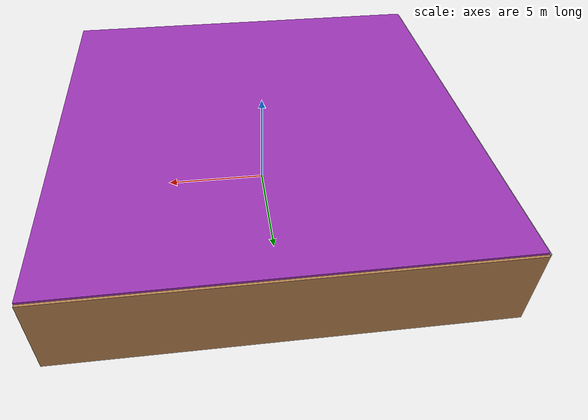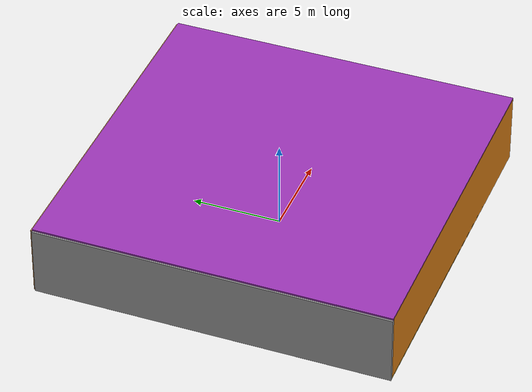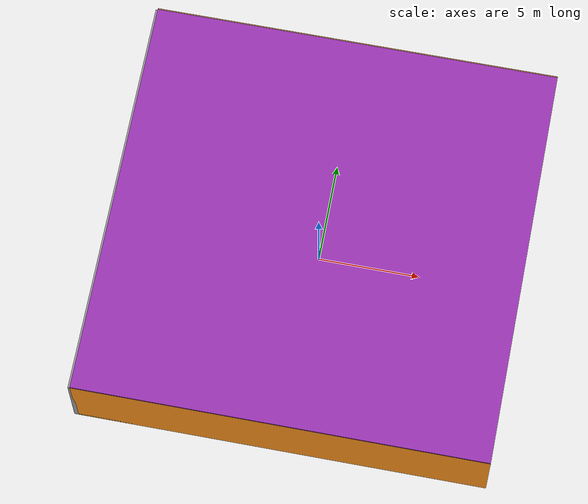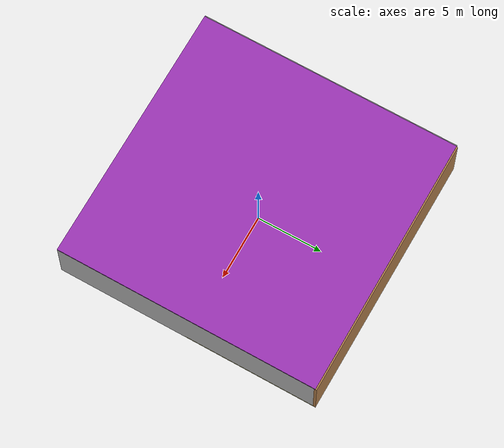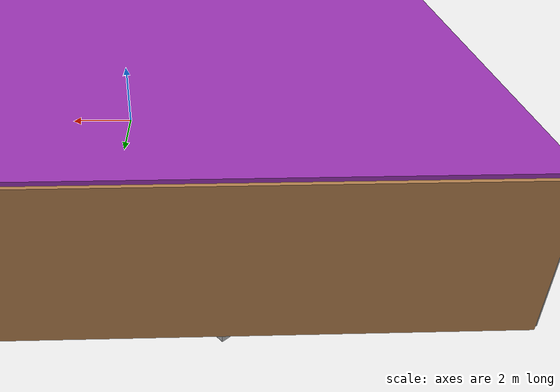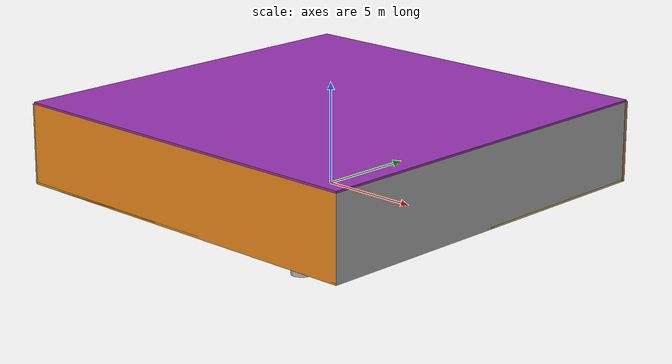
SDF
<sdf version="1.4">
 <world name="default">
  <physics type="ode">
   <max_step_size>0.001</max_step_size>
   <real_time_factor>1</real_time_factor>
   <real_time_update_rate>1000</real_time_update_rate>
   <gravity>0 0 -9.8</gravity>
  </physics>
  <scene><ambient>0.4 0.4 0.4 1</ambient><background>0.7 0.7 0.7 1</background><shadows>1</shadows></scene>
  <model name="Surrounding">
   <static>1</static>
   <link name="Ceiling">
    <collision name="Ceiling_Collision"><geometry><box><size>20 20 0.1</size></box></geometry></collision>
    <visual name="Ceiling_Visual">
     <geometry><box><size>20 20 0.1</size></box></geometry>
     <material>
      <script><uri>file://media/materials/scripts/gazebo.material</uri><name>Gazebo/PurpleGlow</name></script>
     </material>
    </visual>
    <pose>0 0 4.05 0 0 0</pose>
   </link>
   <link name="Wall_South">
    <collision name="Wall_South_Collision">
     <geometry><box><size>20 0 4</size></box></geometry>
     <pose>0 0 2 0 -0 0</pose>
    </collision>
    <visual name="Wall_South_Visual">
     <pose>0 0 2 0 -0 0</pose>
     <geometry><box><size>20 0 4</size></box></geometry>
     <material>
      <script><uri>file://media/materials/scripts/gazebo.material</uri><name>Gazebo/Orange</name></script>
     </material>
    </visual>
    <velocity_decay><linear>0</linear><angular>0</angular></velocity_decay>
    <pose>0 -10 0 0 -0 0</pose>
   </link>
   <link name="Wall_East">
    <collision name="Wall_21_Collision">
     <geometry><box><size>20 0 4</size></box></geometry>
     <pose>0 0 2 0 -0 0</pose>
    </collision>
    <visual name="Wall_21_Visual">
     <pose>0 0 2 0 -0 0</pose>
     <geometry><box><size>20 0 4</size></box></geometry>
     <material>
      <script><uri>file://media/materials/scripts/gazebo.material</uri><name>Gazebo/Pioneer2Body</name></script>
     </material>
    </visual>
    <velocity_decay><linear>0</linear><angular>0</angular></velocity_decay>
    <pose>10 0 0 0 -0 1.5708</pose>
   </link>
   <link name="Wall_North">
    <collision name="Wall_22_Collision">
     <geometry><box><size>20 0.2 4</size></box></geometry>
     <pose>0 0 2 0 -0 0</pose>
    </collision>
    <visual name="Wall_22_Visual">
     <pose>0 0 2 0 -0 0</pose>
     <geometry><box><size>20 0.2 4</size></box></geometry>
     <material>
      <script><uri>file://media/materials/scripts/gazebo.material</uri><name>Gazebo/Wood</name></script>
     </material>
    </visual>
    <velocity_decay><linear>0</linear><angular>0</angular></velocity_decay>
    <pose>0 10 0 0 -0 0</pose>
   </link>
   <link name="Wall_West">
    <collision name="Wall_23_Collision">
     <geometry><box><size>20 0.2 4</size></box></geometry>
     <pose>0 0 2 0 -0 0</pose>
    </collision>
    <visual name="Wall_23_Visual">
     <pose>0 0 2 0 -0 0</pose>
     <geometry><box><size>20 0.2 4</size></box></geometry>
     <material>
      <script><uri>file://media/materials/scripts/gazebo.material</uri><name>Gazebo/GreyGradientSky</name></script>
     </material>
    </visual>
    <velocity_decay><linear>0</linear><angular>0</angular></velocity_decay>
    <pose>-10 0 0 0 0 -1.5708</pose>
   </link>
   <link name="Ground_link">
    <collision name="collision">
     <pose>0 0 .05 0 -0 0</pose>
     <geometry><box><size>20 20 0.1</size></box></geometry>
    </collision>
    <visual name="visual">
     <pose>0 0 .05 0 -0 0</pose>
     <geometry><box><size>20 20 0.1</size></box></geometry>
     <material>
      <script>
       <uri>file://media/materials/scripts/gazebo.material</uri>
       <name>Gazebo/YellowTransparent</name>
      </script>
     </material>
    </visual>
   </link>
   <static>1</static>
  </model>
  <spherical_coordinates>
   <surface_model>EARTH_WGS84</surface_model>
   <latitude_deg>0</latitude_deg>
   <longitude_deg>0</longitude_deg>
   <elevation>0</elevation>
   <heading_deg>0</heading_deg>
  </spherical_coordinates>
  <light name="lightball_0" type="diffuse">
   <diffuse>0.8 0.8 0.8 1</diffuse>
   <specular>0.2 0.2 0.2 1</specular>
   <attenuation>
    <range>100</range>
    <constant>0.7</constant>
    <linear>0.01</linear>
    <quadratic>0.001</quadratic>
   </attenuation>
   <direction>-0.5 0.1 -0.9</direction>
   <pose>-3.14498307094 1.32523524617 1.46530218655 0 0 0</pose>
  </light>
  <light name="lightball_1" type="diffuse">
   <diffuse>0.8 0.8 0.8 1</diffuse>
   <specular>0.2 0.2 0.2 1</specular>
   <attenuation>
    <range>100</range>
    <constant>0.7</constant>
    <linear>0.01</linear>
    <quadratic>0.001</quadratic>
   </attenuation>
   <direction>-0.5 0.1 -0.9</direction>
   <pose>-1.43468187356 -3.6928045387 1.09345069814 0 0 0</pose>
  </light>
  <light name="lightball_2" type="diffuse">
   <diffuse>0.8 0.8 0.8 1</diffuse>
   <specular>0.2 0.2 0.2 1</specular>
   <attenuation>
    <range>100</range>
    <constant>0.7</constant>
    <linear>0.01</linear>
    <quadratic>0.001</quadratic>
   </attenuation>
   <direction>-0.5 0.1 -0.9</direction>
   <pose>3.6294653861 -6.53610724338 2.4659022829 0 0 0</pose>
  </light>
  <light name="lightball_3" type="diffuse">
   <diffuse>0.8 0.8 0.8 1</diffuse>
   <specular>0.2 0.2 0.2 1</specular>
   <attenuation>
    <range>100</range>
    <constant>0.7</constant>
    <linear>0.01</linear>
    <quadratic>0.001</quadratic>
   </attenuation>
   <direction>-0.5 0.1 -0.9</direction>
   <pose>5.502411101 1.42355431504 2.33712799773 0 0 0</pose>
  </light>
  <light name="lightball_4" type="diffuse">
   <diffuse>0.8 0.8 0.8 1</diffuse>
   <specular>0.2 0.2 0.2 1</specular>
   <attenuation>
    <range>100</range>
    <constant>0.7</constant>
    <linear>0.01</linear>
    <quadratic>0.001</quadratic>
   </attenuation>
   <direction>-0.5 0.1 -0.9</direction>
   <pose>8.44153490701 -1.46356520576 0.676122672464 0 0 0</pose>
  </light>
  <light name="lightball_5" type="diffuse">
   <diffuse>0.8 0.8 0.8 1</diffuse>
   <specular>0.2 0.2 0.2 1</specular>
   <attenuation>
    <range>100</range>
    <constant>0.7</constant>
    <linear>0.01</linear>
    <quadratic>0.001</quadratic>
   </attenuation>
   <direction>-0.5 0.1 -0.9</direction>
   <pose>2.96272318661 9.67830758977 1.20600758779 0 0 0</pose>
  </light>
  <light name="lightball_6" type="diffuse">
   <diffuse>0.8 0.8 0.8 1</diffuse>
   <specular>0.2 0.2 0.2 1</specular>
   <attenuation>
    <range>100</range>
    <constant>0.7</constant>
    <linear>0.01</linear>
    <quadratic>0.001</quadratic>
   </attenuation>
   <direction>-0.5 0.1 -0.9</direction>
   <pose>-4.01250867428 -1.50863154873 2.83261041184 0 0 0</pose>
  </light>
  <light name="lightball_7" type="diffuse">
   <diffuse>0.8 0.8 0.8 1</diffuse>
   <specular>0.2 0.2 0.2 1</specular>
   <attenuation>
    <range>100</range>
    <constant>0.7</constant>
    <linear>0.01</linear>
    <quadratic>0.001</quadratic>
   </attenuation>
   <direction>-0.5 0.1 -0.9</direction>
   <pose>6.62783233049 -2.48931302912 1.59348801615 0 0 0</pose>
  </light>
  <light name="lightball_8" type="diffuse">
   <diffuse>0.8 0.8 0.8 1</diffuse>
   <specular>0.2 0.2 0.2 1</specular>
   <attenuation>
    <range>100</range>
    <constant>0.7</constant>
    <linear>0.01</linear>
    <quadratic>0.001</quadratic>
   </attenuation>
   <direction>-0.5 0.1 -0.9</direction>
   <pose>4.31380041471 -7.37444269445 3.29597391895 0 0 0</pose>
  </light>
  <light name="lightball_9" type="diffuse">
   <diffuse>0.8 0.8 0.8 1</diffuse>
   <specular>0.2 0.2 0.2 1</specular>
   <attenuation>
    <range>100</range>
    <constant>0.7</constant>
    <linear>0.01</linear>
    <quadratic>0.001</quadratic>
   </attenuation>
   <direction>-0.5 0.1 -0.9</direction>
   <pose>-9.1362106068 -2.68758823596 1.64235229304 0 0 0</pose>
  </light>
  <light name="lightball_10" type="diffuse">
   <diffuse>0.8 0.8 0.8 1</diffuse>
   <specular>0.2 0.2 0.2 1</specular>
   <attenuation>
    <range>100</range>
    <constant>0.7</constant>
    <linear>0.01</linear>
    <quadratic>0.001</quadratic>
   </attenuation>
   <direction>-0.5 0.1 -0.9</direction>
   <pose>2.21444568648 9.16272438976 1.56489720526 0 0 0</pose>
  </light>
  <light name="lightball_11" type="diffuse">
   <diffuse>0.8 0.8 0.8 1</diffuse>
   <specular>0.2 0.2 0.2 1</specular>
   <attenuation>
    <range>100</range>
    <constant>0.7</constant>
    <linear>0.01</linear>
    <quadratic>0.001</quadratic>
   </attenuation>
   <direction>-0.5 0.1 -0.9</direction>
   <pose>2.41696472409 -1.71574266011 1.16044840822 0 0 0</pose>
  </light>
  <light name="lightball_12" type="diffuse">
   <diffuse>0.8 0.8 0.8 1</diffuse>
   <specular>0.2 0.2 0.2 1</specular>
   <attenuation>
    <range>100</range>
    <constant>0.7</constant>
    <linear>0.01</linear>
    <quadratic>0.001</quadratic>
   </attenuation>
   <direction>-0.5 0.1 -0.9</direction>
   <pose>6.91385482387 -1.09747125419 1.36721533587 0 0 0</pose>
  </light>
  <include>
   <uri>model://textured_shapes</uri>
   <pose>-3.99059234768 3.86213016424 0 0 0 0.0504866970657</pose>
  </include>
  <include>
   <uri>model://textured_shapes</uri>
   <pose>-4.30380947061 8.16925583823 0 0 0 2.24232959052</pose>
  </include>
  <include>
   <uri>model://textured_shapes</uri>
   <pose>7.028729842 -7.48170103761 0 0 0 3.11564000352</pose>
  </include>
  <include>
   <uri>model://construction_cone</uri>
   <pose>6.95497459867 3.79648215125 0 0 0 2.15319880308</pose>
  </include>
 </world>
</sdf>

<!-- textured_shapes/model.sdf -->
<sdf version="1.6">
  <model name="textured_shapes">
    <pose>0 0 0.5 0 0 0</pose>
    <link name="box">
      <pose>0 -1.5 0 0 0 0</pose>
      <collision name="collision">
        <geometry>
          <box>
            <size>1 1 1</size>
          </box>
        </geometry>
      </collision>
      <visual name="visual">
        <geometry>
          <box>
            <size>1 1 1</size>
          </box>
        </geometry>
        <material>
          <script>
            <uri>model://../model_source/models/textured_shapes/materials/scripts</uri>
            <uri>model://../model_source/models/textured_shapes/materials/textures</uri>
            <name>TexturedShape/Squares</name>
          </script>
        </material>
      </visual>
    </link>
    <link name="sphere">
      <collision name="collision">
        <geometry>
          <sphere>
            <radius>0.5</radius>
          </sphere>
        </geometry>
      </collision>
      <visual name="visual">
        <geometry>
          <sphere>
            <radius>0.5</radius>
          </sphere>
        </geometry>
        <material>
          <script>
            <uri>model://../model_source/models/textured_shapes/materials/scripts</uri>
            <uri>model://../model_source/models/textured_shapes/materials/textures</uri>
            <name>TexturedShape/Squares</name>
          </script>
        </material>
      </visual>
    </link>
    <link name="cylinder">
      <pose>0 1.5 0 0 0 0</pose>
      <collision name="collision">
        <geometry>
          <cylinder>
            <radius>0.5</radius>
            <length>1</length>
          </cylinder>
        </geometry>
      </collision>
      <visual name="visual">
        <geometry>
          <cylinder>
            <radius>0.5</radius>
            <length>1</length>
          </cylinder>
        </geometry>
        <material>
          <script>
            <uri>model://../model_source/models/textured_shapes/materials/scripts</uri>
            <uri>model://../model_source/models/textured_shapes/materials/textures</uri>
            <name>TexturedShape/Squares</name>
          </script>
        </material>
      </visual>
    </link>
  </model>
</sdf>

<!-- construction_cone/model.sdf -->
<sdf version="1.5">
  <model name="Construction Cone">
    <link name="link">
      <collision name="collision">
        <geometry>
          <mesh>
            <scale>10 10 10</scale>
            <uri>file://isr-testbed/construction_cone/meshes/construction_cone.dae</uri>
          </mesh>
        </geometry>
      </collision>
      <visual name="visual">
        <geometry>
          <mesh>
            <scale>10 10 10</scale>
            <uri>file://isr-testbed/construction_cone/meshes/construction_cone.dae</uri>
          </mesh>
        </geometry>
      </visual>
    </link>
  </model>
</sdf>
